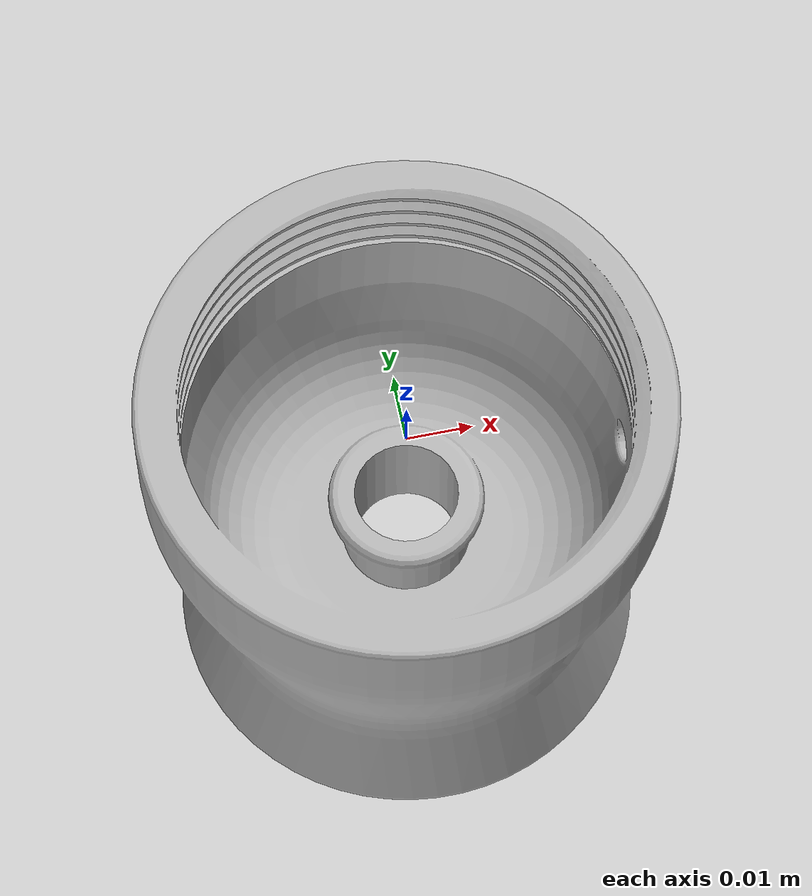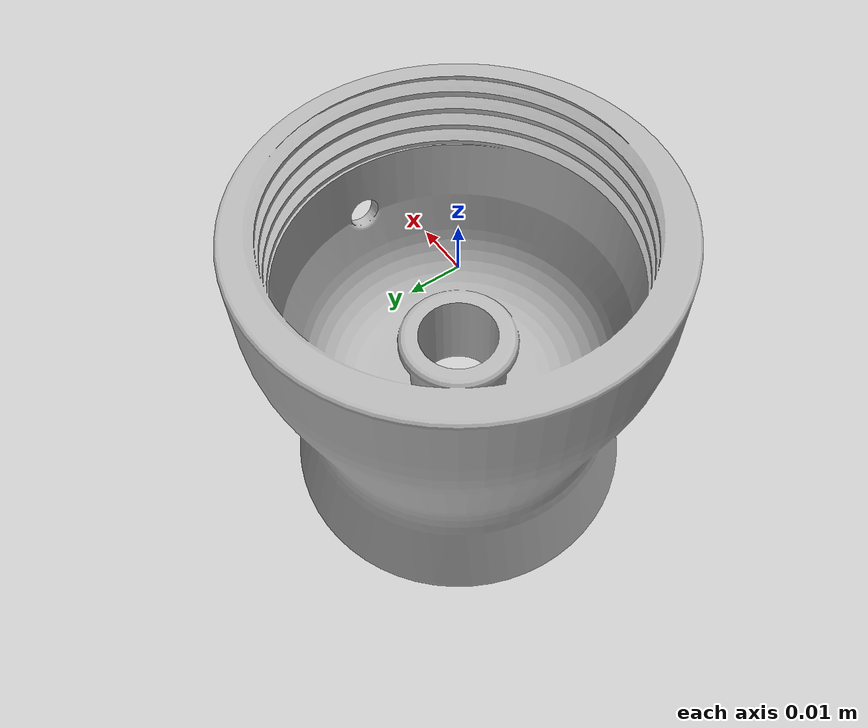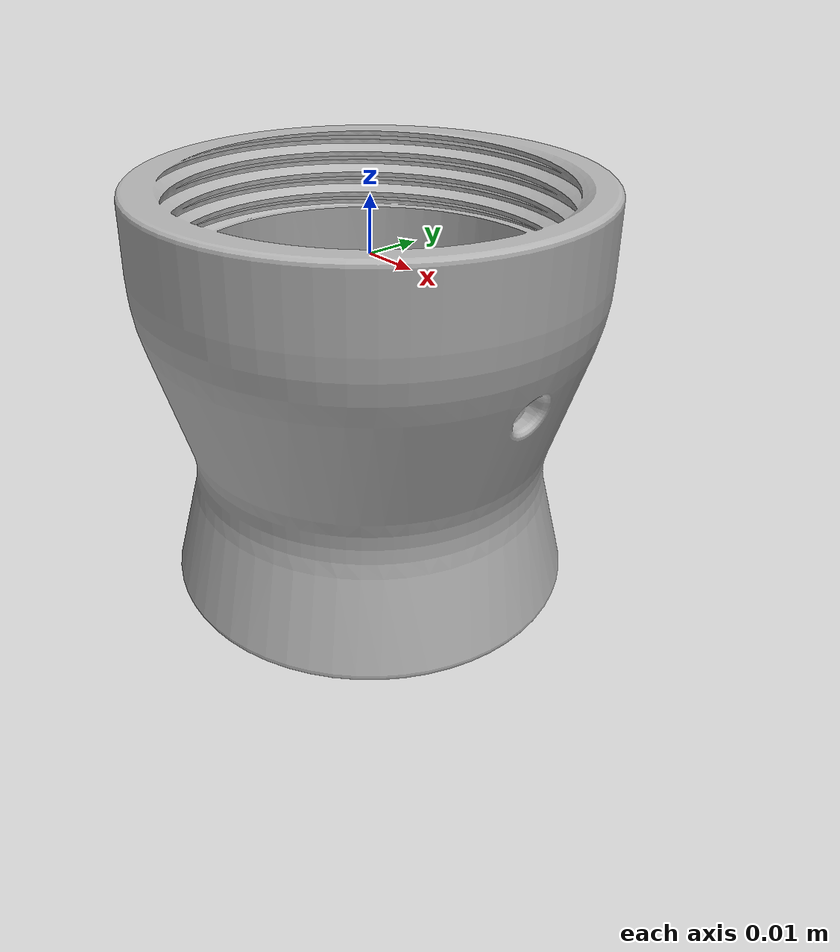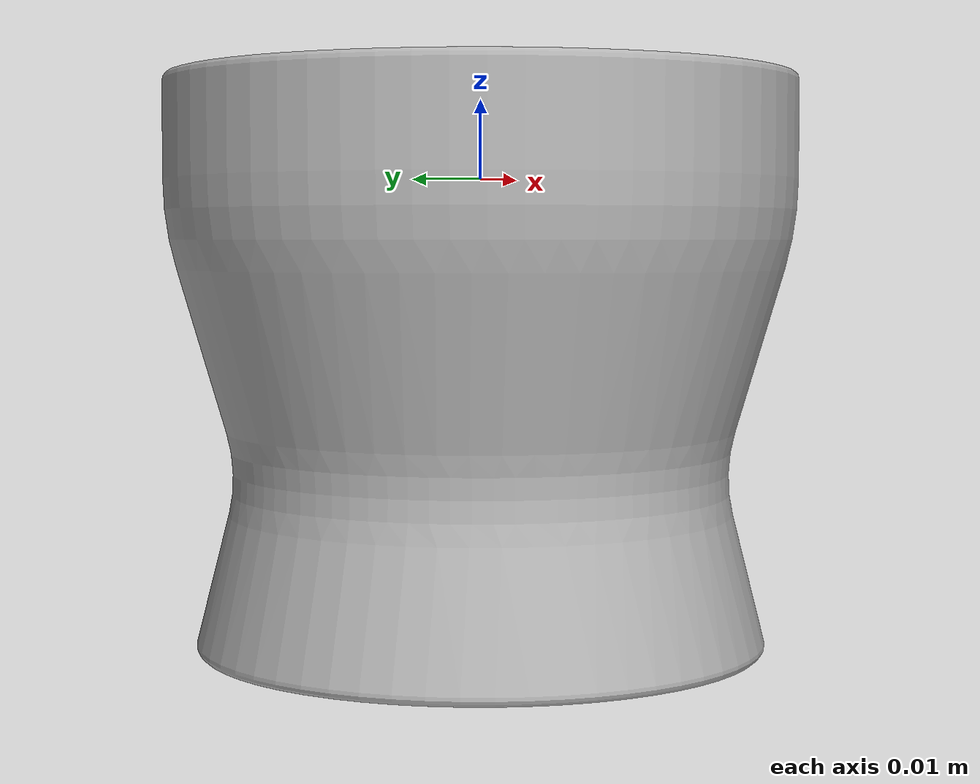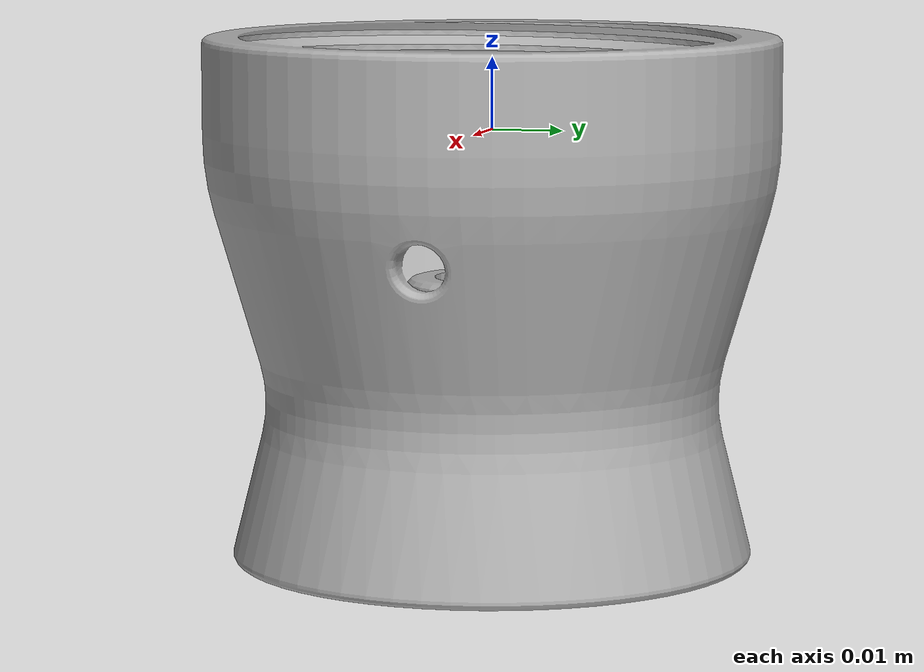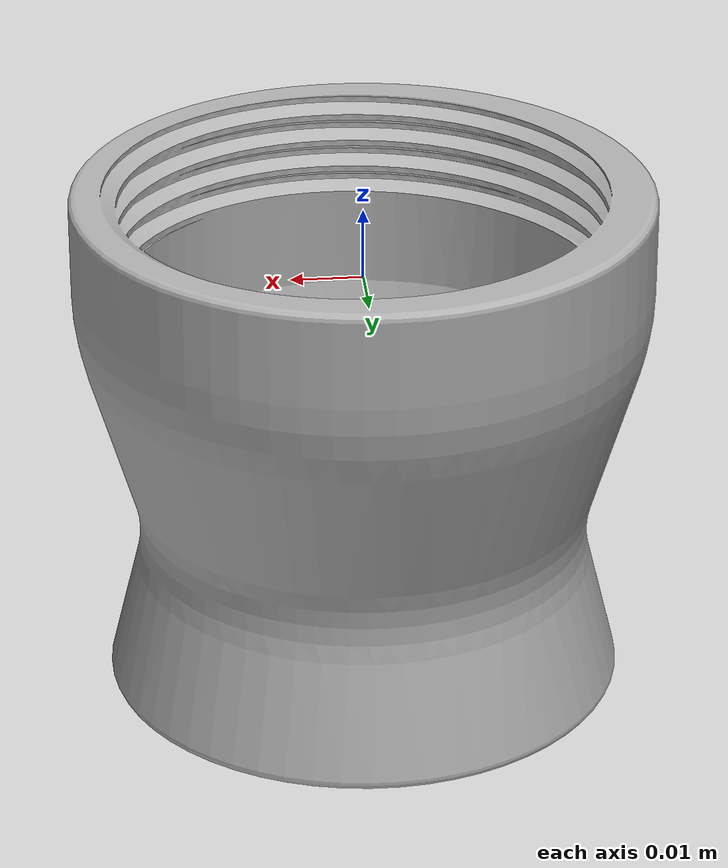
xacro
<?xml version="1.0" ?>
<robot name="Granular_Gripper" xmlns:xacro="http://www.ros.org/wiki/xacro">

<xacro:include filename="$(find Granular_Gripper_description)/urdf/materials.xacro" />
<xacro:include filename="$(find Granular_Gripper_description)/urdf/Granular_Gripper.trans" />
<xacro:include filename="$(find Granular_Gripper_description)/urdf/Granular_Gripper.gazebo" />
<link name="base_link">
  <inertial>
    <origin xyz="-2.5341825311606904e-05 3.0043157359181438e-05 -0.022682975164383043" rpy="0 0 0"/>
    <mass value="0.6935960201081469"/>
    <inertia ixx="0.000644" iyy="0.000643" izz="0.000719" ixy="-0.0" iyz="-1e-06" ixz="-0.0"/>
  </inertial>
  <visual>
    <origin xyz="0 0 0" rpy="0 0 0"/>
    <geometry>
      <mesh filename="package://Granular_Gripper_description/meshes/base_link.stl" scale="0.001 0.001 0.001"/>
    </geometry>
    <material name="silver"/>
  </visual>
  <collision>
    <origin xyz="0 0 0" rpy="0 0 0"/>
    <geometry>
      <mesh filename="package://Granular_Gripper_description/meshes/base_link.stl" scale="0.001 0.001 0.001"/>
    </geometry>
  </collision>
</link>

</robot>

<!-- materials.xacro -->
<robot name="Granular_Gripper" xmlns:xacro="http://www.ros.org/wiki/xacro" >

<material name="silver">
  <color rgba="0.700 0.700 0.700 1.000"/>
</material>

</robot>

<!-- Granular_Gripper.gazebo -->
<robot name="Granular_Gripper" xmlns:xacro="http://www.ros.org/wiki/xacro" >

<xacro:property name="body_color" value="Gazebo/Silver" />

<gazebo>
  <plugin name="control" filename="libgazebo_ros_control.so"/>
</gazebo>
<gazebo reference="base_link">
  <material>${body_color}</material>
  <mu1>0.2</mu1>
  <mu2>0.2</mu2>
  <selfCollide>true</selfCollide>
  <gravity>true</gravity>
</gazebo>

</robot>
